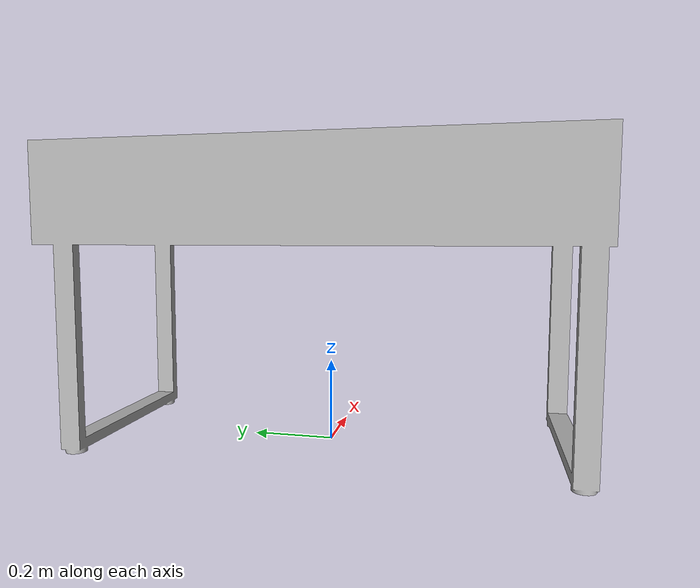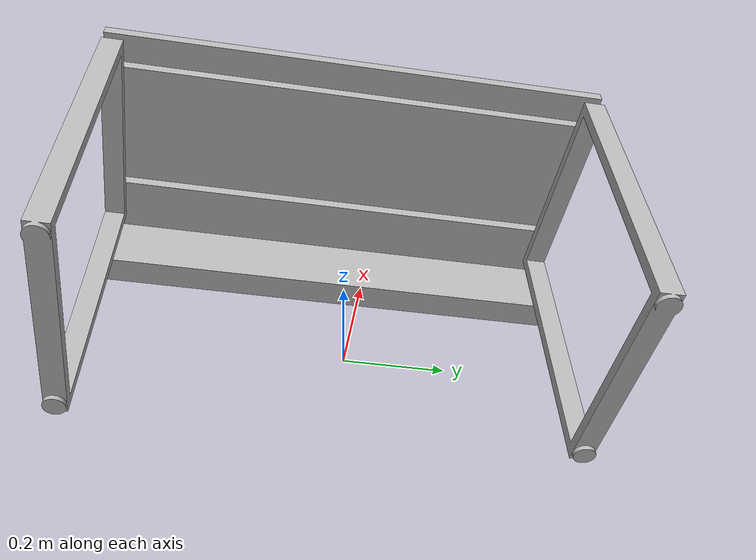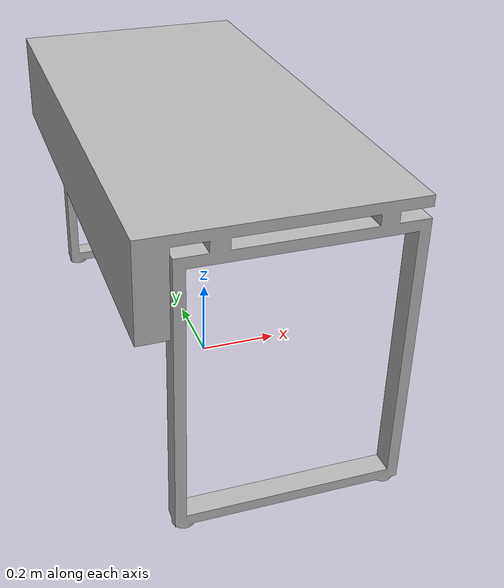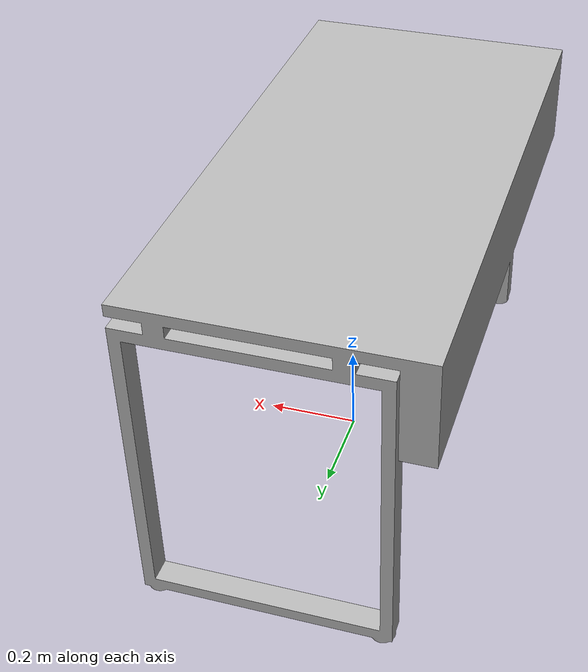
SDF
<sdf version='1.5'>
  <!-- Draw Model -->
  <model name="pc_desk">
    <static>false</static>
    <link name="pc_desk">
      <collision name="collision">
        <geometry>
          <mesh>
            <uri>model://pc_desk/meshes/STL/pc_desk.stl</uri>
          </mesh>
        </geometry>
      </collision>

      <visual name="visual">
        <geometry>
          <mesh>
            <uri>model://pc_desk/meshes/DAE/pc_desk.dae</uri>
          </mesh>
        </geometry>
      </visual>
    </link>
  </model>
</sdf>
